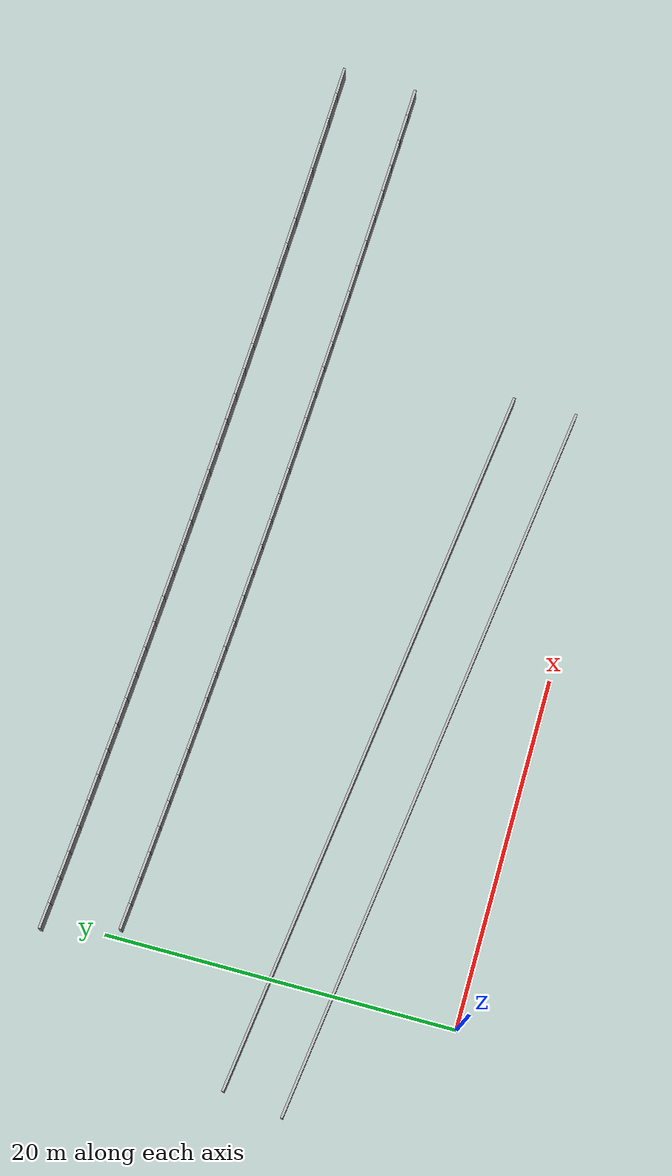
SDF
<?xml version="1.0" ?>
<sdf version="1.6">
  <model name="sps_2403">
    <pose frame="">0 0 0 0 -0 0</pose>
    <static>1</static>
    <self_collide>0</self_collide>
    <allow_auto_disable>0</allow_auto_disable>
    <link name="Wall305">
      <kinematic>0</kinematic>
      <gravity>1</gravity>
      <self_collide>0</self_collide>
      <collision name="collision">
        <geometry>
          <box>
            <size>41.997 0.15 2.5</size>
          </box>
        </geometry>
        <pose frame="">0 0 0 0 -0 0</pose>
      </collision>
      <visual name="visual">
        <geometry>
          <box>
            <size>41.997 0.15 2.5</size>
          </box>
        </geometry>
        <pose frame="">0 0 0 0 -0 0</pose>
        <cast_shadows>1</cast_shadows>
        <transparency>0.0</transparency>
      </visual>
      <pose frame="">13.6576 5.20104 1.25 0 -0 3.00818</pose>
    </link>
    <link name="Wall559">
      <kinematic>0</kinematic>
      <gravity>1</gravity>
      <self_collide>0</self_collide>
      <collision name="collision">
        <geometry>
          <box>
            <size>41.4314 0.15 2.5</size>
          </box>
        </geometry>
        <pose frame="">0 0 0 0 -0 0</pose>
      </collision>
      <visual name="visual">
        <geometry>
          <box>
            <size>41.4314 0.15 2.5</size>
          </box>
        </geometry>
        <pose frame="">0 0 0 0 -0 0</pose>
        <cast_shadows>1</cast_shadows>
        <transparency>0.0</transparency>
      </visual>
      <pose frame="">13.9379 8.69464 1.25 0 0 -0.133417</pose>
    </link>
    <link name="Wall3604">
      <kinematic>0</kinematic>
      <gravity>1</gravity>
      <self_collide>0</self_collide>
      <collision name="collision">
        <geometry>
          <box>
            <size>1.49647 0.15 2.5</size>
          </box>
        </geometry>
        <pose frame="">0 0 0 0 -0 0</pose>
      </collision>
      <visual name="visual">
        <geometry>
          <box>
            <size>1.49647 0.15 2.5</size>
          </box>
        </geometry>
        <pose frame="">0 0 0 0 -0 0</pose>
        <cast_shadows>1</cast_shadows>
        <transparency>0.0</transparency>
      </visual>
      <pose frame="">0.0590432 23.3704 1.25 0 0 -0.0957077</pose>
    </link>
    <link name="Wall3605">
      <kinematic>0</kinematic>
      <gravity>1</gravity>
      <self_collide>0</self_collide>
      <collision name="collision">
        <geometry>
          <box>
            <size>1.49661 0.15 2.5</size>
          </box>
        </geometry>
        <pose frame="">0 0 0 0 -0 0</pose>
      </collision>
      <visual name="visual">
        <geometry>
          <box>
            <size>1.49661 0.15 2.5</size>
          </box>
        </geometry>
        <pose frame="">0 0 0 0 -0 0</pose>
        <cast_shadows>1</cast_shadows>
        <transparency>0.0</transparency>
      </visual>
      <pose frame="">1.54885 23.2286 1.25 0 0 -0.0941011</pose>
    </link>
    <link name="Wall3606">
      <kinematic>0</kinematic>
      <gravity>1</gravity>
      <self_collide>0</self_collide>
      <collision name="collision">
        <geometry>
          <box>
            <size>1.4964 0.15 2.5</size>
          </box>
        </geometry>
        <pose frame="">0 0 0 0 -0 0</pose>
      </collision>
      <visual name="visual">
        <geometry>
          <box>
            <size>1.4964 0.15 2.5</size>
          </box>
        </geometry>
        <pose frame="">0 0 0 0 -0 0</pose>
        <cast_shadows>1</cast_shadows>
        <transparency>0.0</transparency>
      </visual>
      <pose frame="">3.03884 23.0891 1.25 0 0 -0.0925986</pose>
    </link>
    <link name="Wall3607">
      <kinematic>0</kinematic>
      <gravity>1</gravity>
      <self_collide>0</self_collide>
      <collision name="collision">
        <geometry>
          <box>
            <size>1.49661 0.15 2.5</size>
          </box>
        </geometry>
        <pose frame="">0 0 0 0 -0 0</pose>
      </collision>
      <visual name="visual">
        <geometry>
          <box>
            <size>1.49661 0.15 2.5</size>
          </box>
        </geometry>
        <pose frame="">0 0 0 0 -0 0</pose>
        <cast_shadows>1</cast_shadows>
        <transparency>0.0</transparency>
      </visual>
      <pose frame="">4.52904 22.9519 1.25 0 0 -0.0910291</pose>
    </link>
    <link name="Wall3608">
      <kinematic>0</kinematic>
      <gravity>1</gravity>
      <self_collide>0</self_collide>
      <collision name="collision">
        <geometry>
          <box>
            <size>1.49655 0.15 2.5</size>
          </box>
        </geometry>
        <pose frame="">0 0 0 0 -0 0</pose>
      </collision>
      <visual name="visual">
        <geometry>
          <box>
            <size>1.49655 0.15 2.5</size>
          </box>
        </geometry>
        <pose frame="">0 0 0 0 -0 0</pose>
        <cast_shadows>1</cast_shadows>
        <transparency>0.0</transparency>
      </visual>
      <pose frame="">6.01955 22.8172 1.25 0 0 -0.0892309</pose>
    </link>
    <link name="Wall3609">
      <kinematic>0</kinematic>
      <gravity>1</gravity>
      <self_collide>0</self_collide>
      <collision name="collision">
        <geometry>
          <box>
            <size>1.49655 0.15 2.5</size>
          </box>
        </geometry>
        <pose frame="">0 0 0 0 -0 0</pose>
      </collision>
      <visual name="visual">
        <geometry>
          <box>
            <size>1.49655 0.15 2.5</size>
          </box>
        </geometry>
        <pose frame="">0 0 0 0 -0 0</pose>
        <cast_shadows>1</cast_shadows>
        <transparency>0.0</transparency>
      </visual>
      <pose frame="">7.51025 22.6849 1.25 0 0 -0.0877983</pose>
    </link>
    <link name="Wall3610">
      <kinematic>0</kinematic>
      <gravity>1</gravity>
      <self_collide>0</self_collide>
      <collision name="collision">
        <geometry>
          <box>
            <size>1.49659 0.15 2.5</size>
          </box>
        </geometry>
        <pose frame="">0 0 0 0 -0 0</pose>
      </collision>
      <visual name="visual">
        <geometry>
          <box>
            <size>1.49659 0.15 2.5</size>
          </box>
        </geometry>
        <pose frame="">0 0 0 0 -0 0</pose>
        <cast_shadows>1</cast_shadows>
        <transparency>0.0</transparency>
      </visual>
      <pose frame="">9.00115 22.5548 1.25 0 0 -0.0862808</pose>
    </link>
    <link name="Wall3611">
      <kinematic>0</kinematic>
      <gravity>1</gravity>
      <self_collide>0</self_collide>
      <collision name="collision">
        <geometry>
          <box>
            <size>1.49632 0.15 2.5</size>
          </box>
        </geometry>
        <pose frame="">0 0 0 0 -0 0</pose>
      </collision>
      <visual name="visual">
        <geometry>
          <box>
            <size>1.49632 0.15 2.5</size>
          </box>
        </geometry>
        <pose frame="">0 0 0 0 -0 0</pose>
        <cast_shadows>1</cast_shadows>
        <transparency>0.0</transparency>
      </visual>
      <pose frame="">10.4921 22.4271 1.25 0 0 -0.0845775</pose>
    </link>
    <link name="Wall3612">
      <kinematic>0</kinematic>
      <gravity>1</gravity>
      <self_collide>0</self_collide>
      <collision name="collision">
        <geometry>
          <box>
            <size>1.49656 0.15 2.5</size>
          </box>
        </geometry>
        <pose frame="">0 0 0 0 -0 0</pose>
      </collision>
      <visual name="visual">
        <geometry>
          <box>
            <size>1.49656 0.15 2.5</size>
          </box>
        </geometry>
        <pose frame="">0 0 0 0 -0 0</pose>
        <cast_shadows>1</cast_shadows>
        <transparency>0.0</transparency>
      </visual>
      <pose frame="">11.9833 22.3018 1.25 0 0 -0.0830904</pose>
    </link>
    <link name="Wall3613">
      <kinematic>0</kinematic>
      <gravity>1</gravity>
      <self_collide>0</self_collide>
      <collision name="collision">
        <geometry>
          <box>
            <size>1.4966 0.15 2.5</size>
          </box>
        </geometry>
        <pose frame="">0 0 0 0 -0 0</pose>
      </collision>
      <visual name="visual">
        <geometry>
          <box>
            <size>1.4966 0.15 2.5</size>
          </box>
        </geometry>
        <pose frame="">0 0 0 0 -0 0</pose>
        <cast_shadows>1</cast_shadows>
        <transparency>0.0</transparency>
      </visual>
      <pose frame="">13.4748 22.1788 1.25 0 0 -0.0814919</pose>
    </link>
    <link name="Wall3614">
      <kinematic>0</kinematic>
      <gravity>1</gravity>
      <self_collide>0</self_collide>
      <collision name="collision">
        <geometry>
          <box>
            <size>1.49633 0.15 2.5</size>
          </box>
        </geometry>
        <pose frame="">0 0 0 0 -0 0</pose>
      </collision>
      <visual name="visual">
        <geometry>
          <box>
            <size>1.49633 0.15 2.5</size>
          </box>
        </geometry>
        <pose frame="">0 0 0 0 -0 0</pose>
        <cast_shadows>1</cast_shadows>
        <transparency>0.0</transparency>
      </visual>
      <pose frame="">14.9665 22.0583 1.25 0 0 -0.079747</pose>
    </link>
    <link name="Wall3615">
      <kinematic>0</kinematic>
      <gravity>1</gravity>
      <self_collide>0</self_collide>
      <collision name="collision">
        <geometry>
          <box>
            <size>1.4966 0.15 2.5</size>
          </box>
        </geometry>
        <pose frame="">0 0 0 0 -0 0</pose>
      </collision>
      <visual name="visual">
        <geometry>
          <box>
            <size>1.4966 0.15 2.5</size>
          </box>
        </geometry>
        <pose frame="">0 0 0 0 -0 0</pose>
        <cast_shadows>1</cast_shadows>
        <transparency>0.0</transparency>
      </visual>
      <pose frame="">16.4582 21.9401 1.25 0 0 -0.0783827</pose>
    </link>
    <link name="Wall3616">
      <kinematic>0</kinematic>
      <gravity>1</gravity>
      <self_collide>0</self_collide>
      <collision name="collision">
        <geometry>
          <box>
            <size>1.4966 0.15 2.5</size>
          </box>
        </geometry>
        <pose frame="">0 0 0 0 -0 0</pose>
      </collision>
      <visual name="visual">
        <geometry>
          <box>
            <size>1.4966 0.15 2.5</size>
          </box>
        </geometry>
        <pose frame="">0 0 0 0 -0 0</pose>
        <cast_shadows>1</cast_shadows>
        <transparency>0.0</transparency>
      </visual>
      <pose frame="">17.9503 21.8241 1.25 0 0 -0.0767875</pose>
    </link>
    <link name="Wall3617">
      <kinematic>0</kinematic>
      <gravity>1</gravity>
      <self_collide>0</self_collide>
      <collision name="collision">
        <geometry>
          <box>
            <size>1.49646 0.15 2.5</size>
          </box>
        </geometry>
        <pose frame="">0 0 0 0 -0 0</pose>
      </collision>
      <visual name="visual">
        <geometry>
          <box>
            <size>1.49646 0.15 2.5</size>
          </box>
        </geometry>
        <pose frame="">0 0 0 0 -0 0</pose>
        <cast_shadows>1</cast_shadows>
        <transparency>0.0</transparency>
      </visual>
      <pose frame="">19.4426 21.7106 1.25 0 0 -0.0750358</pose>
    </link>
    <link name="Wall3618">
      <kinematic>0</kinematic>
      <gravity>1</gravity>
      <self_collide>0</self_collide>
      <collision name="collision">
        <geometry>
          <box>
            <size>1.4966 0.15 2.5</size>
          </box>
        </geometry>
        <pose frame="">0 0 0 0 -0 0</pose>
      </collision>
      <visual name="visual">
        <geometry>
          <box>
            <size>1.4966 0.15 2.5</size>
          </box>
        </geometry>
        <pose frame="">0 0 0 0 -0 0</pose>
        <cast_shadows>1</cast_shadows>
        <transparency>0.0</transparency>
      </visual>
      <pose frame="">20.935 21.5995 1.25 0 0 -0.0735564</pose>
    </link>
    <link name="Wall3619">
      <kinematic>0</kinematic>
      <gravity>1</gravity>
      <self_collide>0</self_collide>
      <collision name="collision">
        <geometry>
          <box>
            <size>1.49648 0.15 2.5</size>
          </box>
        </geometry>
        <pose frame="">0 0 0 0 -0 0</pose>
      </collision>
      <visual name="visual">
        <geometry>
          <box>
            <size>1.49648 0.15 2.5</size>
          </box>
        </geometry>
        <pose frame="">0 0 0 0 -0 0</pose>
        <cast_shadows>1</cast_shadows>
        <transparency>0.0</transparency>
      </visual>
      <pose frame="">22.4275 21.4908 1.25 0 0 -0.0718451</pose>
    </link>
    <link name="Wall3620">
      <kinematic>0</kinematic>
      <gravity>1</gravity>
      <self_collide>0</self_collide>
      <collision name="collision">
        <geometry>
          <box>
            <size>1.4965 0.15 2.5</size>
          </box>
        </geometry>
        <pose frame="">0 0 0 0 -0 0</pose>
      </collision>
      <visual name="visual">
        <geometry>
          <box>
            <size>1.4965 0.15 2.5</size>
          </box>
        </geometry>
        <pose frame="">0 0 0 0 -0 0</pose>
        <cast_shadows>1</cast_shadows>
        <transparency>0.0</transparency>
      </visual>
      <pose frame="">23.9202 21.3845 1.25 0 0 -0.0703718</pose>
    </link>
    <link name="Wall3621">
      <kinematic>0</kinematic>
      <gravity>1</gravity>
      <self_collide>0</self_collide>
      <collision name="collision">
        <geometry>
          <box>
            <size>1.49653 0.15 2.5</size>
          </box>
        </geometry>
        <pose frame="">0 0 0 0 -0 0</pose>
      </collision>
      <visual name="visual">
        <geometry>
          <box>
            <size>1.49653 0.15 2.5</size>
          </box>
        </geometry>
        <pose frame="">0 0 0 0 -0 0</pose>
        <cast_shadows>1</cast_shadows>
        <transparency>0.0</transparency>
      </visual>
      <pose frame="">25.4131 21.2804 1.25 0 0 -0.0688579</pose>
    </link>
    <link name="Wall3622">
      <kinematic>0</kinematic>
      <gravity>1</gravity>
      <self_collide>0</self_collide>
      <collision name="collision">
        <geometry>
          <box>
            <size>1.49641 0.15 2.5</size>
          </box>
        </geometry>
        <pose frame="">0 0 0 0 -0 0</pose>
      </collision>
      <visual name="visual">
        <geometry>
          <box>
            <size>1.49641 0.15 2.5</size>
          </box>
        </geometry>
        <pose frame="">0 0 0 0 -0 0</pose>
        <cast_shadows>1</cast_shadows>
        <transparency>0.0</transparency>
      </visual>
      <pose frame="">26.9062 21.1787 1.25 0 0 -0.0671461</pose>
    </link>
    <link name="Wall3623">
      <kinematic>0</kinematic>
      <gravity>1</gravity>
      <self_collide>0</self_collide>
      <collision name="collision">
        <geometry>
          <box>
            <size>1.49663 0.15 2.5</size>
          </box>
        </geometry>
        <pose frame="">0 0 0 0 -0 0</pose>
      </collision>
      <visual name="visual">
        <geometry>
          <box>
            <size>1.49663 0.15 2.5</size>
          </box>
        </geometry>
        <pose frame="">0 0 0 0 -0 0</pose>
        <cast_shadows>1</cast_shadows>
        <transparency>0.0</transparency>
      </visual>
      <pose frame="">28.3994 21.0794 1.25 0 0 -0.0656648</pose>
    </link>
    <link name="Wall3624">
      <kinematic>0</kinematic>
      <gravity>1</gravity>
      <self_collide>0</self_collide>
      <collision name="collision">
        <geometry>
          <box>
            <size>1.49642 0.15 2.5</size>
          </box>
        </geometry>
        <pose frame="">0 0 0 0 -0 0</pose>
      </collision>
      <visual name="visual">
        <geometry>
          <box>
            <size>1.49642 0.15 2.5</size>
          </box>
        </geometry>
        <pose frame="">0 0 0 0 -0 0</pose>
        <cast_shadows>1</cast_shadows>
        <transparency>0.0</transparency>
      </visual>
      <pose frame="">29.8928 20.9824 1.25 0 0 -0.0640802</pose>
    </link>
    <link name="Wall3625">
      <kinematic>0</kinematic>
      <gravity>1</gravity>
      <self_collide>0</self_collide>
      <collision name="collision">
        <geometry>
          <box>
            <size>1.49657 0.15 2.5</size>
          </box>
        </geometry>
        <pose frame="">0 0 0 0 -0 0</pose>
      </collision>
      <visual name="visual">
        <geometry>
          <box>
            <size>1.49657 0.15 2.5</size>
          </box>
        </geometry>
        <pose frame="">0 0 0 0 -0 0</pose>
        <cast_shadows>1</cast_shadows>
        <transparency>0.0</transparency>
      </visual>
      <pose frame="">31.3863 20.8878 1.25 0 0 -0.0624392</pose>
    </link>
    <link name="Wall3626">
      <kinematic>0</kinematic>
      <gravity>1</gravity>
      <self_collide>0</self_collide>
      <collision name="collision">
        <geometry>
          <box>
            <size>1.49654 0.15 2.5</size>
          </box>
        </geometry>
        <pose frame="">0 0 0 0 -0 0</pose>
      </collision>
      <visual name="visual">
        <geometry>
          <box>
            <size>1.49654 0.15 2.5</size>
          </box>
        </geometry>
        <pose frame="">0 0 0 0 -0 0</pose>
        <cast_shadows>1</cast_shadows>
        <transparency>0.0</transparency>
      </visual>
      <pose frame="">32.88 20.7956 1.25 0 0 -0.0608466</pose>
    </link>
    <link name="Wall3627">
      <kinematic>0</kinematic>
      <gravity>1</gravity>
      <self_collide>0</self_collide>
      <collision name="collision">
        <geometry>
          <box>
            <size>1.49641 0.15 2.5</size>
          </box>
        </geometry>
        <pose frame="">0 0 0 0 -0 0</pose>
      </collision>
      <visual name="visual">
        <geometry>
          <box>
            <size>1.49641 0.15 2.5</size>
          </box>
        </geometry>
        <pose frame="">0 0 0 0 -0 0</pose>
        <cast_shadows>1</cast_shadows>
        <transparency>0.0</transparency>
      </visual>
      <pose frame="">34.3737 20.7057 1.25 0 0 -0.059381</pose>
    </link>
    <link name="Wall3628">
      <kinematic>0</kinematic>
      <gravity>1</gravity>
      <self_collide>0</self_collide>
      <collision name="collision">
        <geometry>
          <box>
            <size>1.49668 0.15 2.5</size>
          </box>
        </geometry>
        <pose frame="">0 0 0 0 -0 0</pose>
      </collision>
      <visual name="visual">
        <geometry>
          <box>
            <size>1.49668 0.15 2.5</size>
          </box>
        </geometry>
        <pose frame="">0 0 0 0 -0 0</pose>
        <cast_shadows>1</cast_shadows>
        <transparency>0.0</transparency>
      </visual>
      <pose frame="">35.8677 20.6182 1.25 0 0 -0.0576136</pose>
    </link>
    <link name="Wall3629">
      <kinematic>0</kinematic>
      <gravity>1</gravity>
      <self_collide>0</self_collide>
      <collision name="collision">
        <geometry>
          <box>
            <size>1.49638 0.15 2.5</size>
          </box>
        </geometry>
        <pose frame="">0 0 0 0 -0 0</pose>
      </collision>
      <visual name="visual">
        <geometry>
          <box>
            <size>1.49638 0.15 2.5</size>
          </box>
        </geometry>
        <pose frame="">0 0 0 0 -0 0</pose>
        <cast_shadows>1</cast_shadows>
        <transparency>0.0</transparency>
      </visual>
      <pose frame="">37.3618 20.5331 1.25 0 0 -0.0561546</pose>
    </link>
    <link name="Wall3630">
      <kinematic>0</kinematic>
      <gravity>1</gravity>
      <self_collide>0</self_collide>
      <collision name="collision">
        <geometry>
          <box>
            <size>1.49661 0.15 2.5</size>
          </box>
        </geometry>
        <pose frame="">0 0 0 0 -0 0</pose>
      </collision>
      <visual name="visual">
        <geometry>
          <box>
            <size>1.49661 0.15 2.5</size>
          </box>
        </geometry>
        <pose frame="">0 0 0 0 -0 0</pose>
        <cast_shadows>1</cast_shadows>
        <transparency>0.0</transparency>
      </visual>
      <pose frame="">38.856 20.4503 1.25 0 0 -0.0545529</pose>
    </link>
    <link name="Wall3631">
      <kinematic>0</kinematic>
      <gravity>1</gravity>
      <self_collide>0</self_collide>
      <collision name="collision">
        <geometry>
          <box>
            <size>1.49654 0.15 2.5</size>
          </box>
        </geometry>
        <pose frame="">0 0 0 0 -0 0</pose>
      </collision>
      <visual name="visual">
        <geometry>
          <box>
            <size>1.49654 0.15 2.5</size>
          </box>
        </geometry>
        <pose frame="">0 0 0 0 -0 0</pose>
        <cast_shadows>1</cast_shadows>
        <transparency>0.0</transparency>
      </visual>
      <pose frame="">40.3505 20.3699 1.25 0 0 -0.0529625</pose>
    </link>
    <link name="Wall3632">
      <kinematic>0</kinematic>
      <gravity>1</gravity>
      <self_collide>0</self_collide>
      <collision name="collision">
        <geometry>
          <box>
            <size>1.49653 0.15 2.5</size>
          </box>
        </geometry>
        <pose frame="">0 0 0 0 -0 0</pose>
      </collision>
      <visual name="visual">
        <geometry>
          <box>
            <size>1.49653 0.15 2.5</size>
          </box>
        </geometry>
        <pose frame="">0 0 0 0 -0 0</pose>
        <cast_shadows>1</cast_shadows>
        <transparency>0.0</transparency>
      </visual>
      <pose frame="">41.845 20.292 1.25 0 0 -0.0512069</pose>
    </link>
    <link name="Wall3633">
      <kinematic>0</kinematic>
      <gravity>1</gravity>
      <self_collide>0</self_collide>
      <collision name="collision">
        <geometry>
          <box>
            <size>1.49649 0.15 2.5</size>
          </box>
        </geometry>
        <pose frame="">0 0 0 0 -0 0</pose>
      </collision>
      <visual name="visual">
        <geometry>
          <box>
            <size>1.49649 0.15 2.5</size>
          </box>
        </geometry>
        <pose frame="">0 0 0 0 -0 0</pose>
        <cast_shadows>1</cast_shadows>
        <transparency>0.0</transparency>
      </visual>
      <pose frame="">43.3396 20.2164 1.25 0 0 -0.0498606</pose>
    </link>
    <link name="Wall3634">
      <kinematic>0</kinematic>
      <gravity>1</gravity>
      <self_collide>0</self_collide>
      <collision name="collision">
        <geometry>
          <box>
            <size>1.49649 0.15 2.5</size>
          </box>
        </geometry>
        <pose frame="">0 0 0 0 -0 0</pose>
      </collision>
      <visual name="visual">
        <geometry>
          <box>
            <size>1.49649 0.15 2.5</size>
          </box>
        </geometry>
        <pose frame="">0 0 0 0 -0 0</pose>
        <cast_shadows>1</cast_shadows>
        <transparency>0.0</transparency>
      </visual>
      <pose frame="">44.8343 20.1431 1.25 0 0 -0.0481457</pose>
    </link>
    <link name="Wall3635">
      <kinematic>0</kinematic>
      <gravity>1</gravity>
      <self_collide>0</self_collide>
      <collision name="collision">
        <geometry>
          <box>
            <size>1.49667 0.15 2.5</size>
          </box>
        </geometry>
        <pose frame="">0 0 0 0 -0 0</pose>
      </collision>
      <visual name="visual">
        <geometry>
          <box>
            <size>1.49667 0.15 2.5</size>
          </box>
        </geometry>
        <pose frame="">0 0 0 0 -0 0</pose>
        <cast_shadows>1</cast_shadows>
        <transparency>0.0</transparency>
      </visual>
      <pose frame="">46.3292 20.0723 1.25 0 0 -0.0465066</pose>
    </link>
    <link name="Wall3636">
      <kinematic>0</kinematic>
      <gravity>1</gravity>
      <self_collide>0</self_collide>
      <collision name="collision">
        <geometry>
          <box>
            <size>1.49651 0.15 2.5</size>
          </box>
        </geometry>
        <pose frame="">0 0 0 0 -0 0</pose>
      </collision>
      <visual name="visual">
        <geometry>
          <box>
            <size>1.49651 0.15 2.5</size>
          </box>
        </geometry>
        <pose frame="">0 0 0 0 -0 0</pose>
        <cast_shadows>1</cast_shadows>
        <transparency>0.0</transparency>
      </visual>
      <pose frame="">47.8242 20.0038 1.25 0 0 -0.0450418</pose>
    </link>
    <link name="Wall3637">
      <kinematic>0</kinematic>
      <gravity>1</gravity>
      <self_collide>0</self_collide>
      <collision name="collision">
        <geometry>
          <box>
            <size>1.49659 0.15 2.5</size>
          </box>
        </geometry>
        <pose frame="">0 0 0 0 -0 0</pose>
      </collision>
      <visual name="visual">
        <geometry>
          <box>
            <size>1.49659 0.15 2.5</size>
          </box>
        </geometry>
        <pose frame="">0 0 0 0 -0 0</pose>
        <cast_shadows>1</cast_shadows>
        <transparency>0.0</transparency>
      </visual>
      <pose frame="">49.3193 19.9376 1.25 0 0 -0.0434474</pose>
    </link>
    <link name="Wall7380">
      <kinematic>0</kinematic>
      <gravity>1</gravity>
      <self_collide>0</self_collide>
      <collision name="collision">
        <geometry>
          <box>
            <size>1.50305 0.15 2.5</size>
          </box>
        </geometry>
        <pose frame="">0 0 0 0 -0 0</pose>
      </collision>
      <visual name="visual">
        <geometry>
          <box>
            <size>1.50305 0.15 2.5</size>
          </box>
        </geometry>
        <pose frame="">0 0 0 0 -0 0</pose>
        <cast_shadows>1</cast_shadows>
        <transparency>0.0</transparency>
      </visual>
      <pose frame="">1.16344 19.1061 1.25 0 0 -0.0941047</pose>
    </link>
    <link name="Wall7381">
      <kinematic>0</kinematic>
      <gravity>1</gravity>
      <self_collide>0</self_collide>
      <collision name="collision">
        <geometry>
          <box>
            <size>1.503 0.15 2.5</size>
          </box>
        </geometry>
        <pose frame="">0 0 0 0 -0 0</pose>
      </collision>
      <visual name="visual">
        <geometry>
          <box>
            <size>1.503 0.15 2.5</size>
          </box>
        </geometry>
        <pose frame="">0 0 0 0 -0 0</pose>
        <cast_shadows>1</cast_shadows>
        <transparency>0.0</transparency>
      </visual>
      <pose frame="">2.65993 18.9661 1.25 0 0 -0.0924761</pose>
    </link>
    <link name="Wall7382">
      <kinematic>0</kinematic>
      <gravity>1</gravity>
      <self_collide>0</self_collide>
      <collision name="collision">
        <geometry>
          <box>
            <size>1.50323 0.15 2.5</size>
          </box>
        </geometry>
        <pose frame="">0 0 0 0 -0 0</pose>
      </collision>
      <visual name="visual">
        <geometry>
          <box>
            <size>1.50323 0.15 2.5</size>
          </box>
        </geometry>
        <pose frame="">0 0 0 0 -0 0</pose>
        <cast_shadows>1</cast_shadows>
        <transparency>0.0</transparency>
      </visual>
      <pose frame="">4.15673 18.8284 1.25 0 0 -0.0909944</pose>
    </link>
    <link name="Wall7383">
      <kinematic>0</kinematic>
      <gravity>1</gravity>
      <self_collide>0</self_collide>
      <collision name="collision">
        <geometry>
          <box>
            <size>1.50301 0.15 2.5</size>
          </box>
        </geometry>
        <pose frame="">0 0 0 0 -0 0</pose>
      </collision>
      <visual name="visual">
        <geometry>
          <box>
            <size>1.50301 0.15 2.5</size>
          </box>
        </geometry>
        <pose frame="">0 0 0 0 -0 0</pose>
        <cast_shadows>1</cast_shadows>
        <transparency>0.0</transparency>
      </visual>
      <pose frame="">5.65374 18.693 1.25 0 0 -0.0894172</pose>
    </link>
    <link name="Wall7384">
      <kinematic>0</kinematic>
      <gravity>1</gravity>
      <self_collide>0</self_collide>
      <collision name="collision">
        <geometry>
          <box>
            <size>1.50298 0.15 2.5</size>
          </box>
        </geometry>
        <pose frame="">0 0 0 0 -0 0</pose>
      </collision>
      <visual name="visual">
        <geometry>
          <box>
            <size>1.50298 0.15 2.5</size>
          </box>
        </geometry>
        <pose frame="">0 0 0 0 -0 0</pose>
        <cast_shadows>1</cast_shadows>
        <transparency>0.0</transparency>
      </visual>
      <pose frame="">7.15084 18.56 1.25 0 0 -0.0877885</pose>
    </link>
    <link name="Wall7385">
      <kinematic>0</kinematic>
      <gravity>1</gravity>
      <self_collide>0</self_collide>
      <collision name="collision">
        <geometry>
          <box>
            <size>1.50302 0.15 2.5</size>
          </box>
        </geometry>
        <pose frame="">0 0 0 0 -0 0</pose>
      </collision>
      <visual name="visual">
        <geometry>
          <box>
            <size>1.50302 0.15 2.5</size>
          </box>
        </geometry>
        <pose frame="">0 0 0 0 -0 0</pose>
        <cast_shadows>1</cast_shadows>
        <transparency>0.0</transparency>
      </visual>
      <pose frame="">8.64815 18.4294 1.25 0 0 -0.0861966</pose>
    </link>
    <link name="Wall7386">
      <kinematic>0</kinematic>
      <gravity>1</gravity>
      <self_collide>0</self_collide>
      <collision name="collision">
        <geometry>
          <box>
            <size>1.50294 0.15 2.5</size>
          </box>
        </geometry>
        <pose frame="">0 0 0 0 -0 0</pose>
      </collision>
      <visual name="visual">
        <geometry>
          <box>
            <size>1.50294 0.15 2.5</size>
          </box>
        </geometry>
        <pose frame="">0 0 0 0 -0 0</pose>
        <cast_shadows>1</cast_shadows>
        <transparency>0.0</transparency>
      </visual>
      <pose frame="">10.1457 18.3012 1.25 0 0 -0.0846117</pose>
    </link>
    <link name="Wall7387">
      <kinematic>0</kinematic>
      <gravity>1</gravity>
      <self_collide>0</self_collide>
      <collision name="collision">
        <geometry>
          <box>
            <size>1.50324 0.15 2.5</size>
          </box>
        </geometry>
        <pose frame="">0 0 0 0 -0 0</pose>
      </collision>
      <visual name="visual">
        <geometry>
          <box>
            <size>1.50324 0.15 2.5</size>
          </box>
        </geometry>
        <pose frame="">0 0 0 0 -0 0</pose>
        <cast_shadows>1</cast_shadows>
        <transparency>0.0</transparency>
      </visual>
      <pose frame="">11.6435 18.1753 1.25 0 0 -0.0831277</pose>
    </link>
    <link name="Wall7388">
      <kinematic>0</kinematic>
      <gravity>1</gravity>
      <self_collide>0</self_collide>
      <collision name="collision">
        <geometry>
          <box>
            <size>1.50314 0.15 2.5</size>
          </box>
        </geometry>
        <pose frame="">0 0 0 0 -0 0</pose>
      </collision>
      <visual name="visual">
        <geometry>
          <box>
            <size>1.50314 0.15 2.5</size>
          </box>
        </geometry>
        <pose frame="">0 0 0 0 -0 0</pose>
        <cast_shadows>1</cast_shadows>
        <transparency>0.0</transparency>
      </visual>
      <pose frame="">13.1416 18.0518 1.25 0 0 -0.081381</pose>
    </link>
    <link name="Wall7389">
      <kinematic>0</kinematic>
      <gravity>1</gravity>
      <self_collide>0</self_collide>
      <collision name="collision">
        <geometry>
          <box>
            <size>1.50321 0.15 2.5</size>
          </box>
        </geometry>
        <pose frame="">0 0 0 0 -0 0</pose>
      </collision>
      <visual name="visual">
        <geometry>
          <box>
            <size>1.50321 0.15 2.5</size>
          </box>
        </geometry>
        <pose frame="">0 0 0 0 -0 0</pose>
        <cast_shadows>1</cast_shadows>
        <transparency>0.0</transparency>
      </visual>
      <pose frame="">14.6399 17.9307 1.25 0 0 -0.0799109</pose>
    </link>
    <link name="Wall7390">
      <kinematic>0</kinematic>
      <gravity>1</gravity>
      <self_collide>0</self_collide>
      <collision name="collision">
        <geometry>
          <box>
            <size>1.50302 0.15 2.5</size>
          </box>
        </geometry>
        <pose frame="">0 0 0 0 -0 0</pose>
      </collision>
      <visual name="visual">
        <geometry>
          <box>
            <size>1.50302 0.15 2.5</size>
          </box>
        </geometry>
        <pose frame="">0 0 0 0 -0 0</pose>
        <cast_shadows>1</cast_shadows>
        <transparency>0.0</transparency>
      </visual>
      <pose frame="">16.1383 17.8119 1.25 0 0 -0.0783323</pose>
    </link>
    <link name="Wall7391">
      <kinematic>0</kinematic>
      <gravity>1</gravity>
      <self_collide>0</self_collide>
      <collision name="collision">
        <geometry>
          <box>
            <size>1.50302 0.15 2.5</size>
          </box>
        </geometry>
        <pose frame="">0 0 0 0 -0 0</pose>
      </collision>
      <visual name="visual">
        <geometry>
          <box>
            <size>1.50302 0.15 2.5</size>
          </box>
        </geometry>
        <pose frame="">0 0 0 0 -0 0</pose>
        <cast_shadows>1</cast_shadows>
        <transparency>0.0</transparency>
      </visual>
      <pose frame="">17.6368 17.6955 1.25 0 0 -0.0767034</pose>
    </link>
    <link name="Wall7392">
      <kinematic>0</kinematic>
      <gravity>1</gravity>
      <self_collide>0</self_collide>
      <collision name="collision">
        <geometry>
          <box>
            <size>1.50302 0.15 2.5</size>
          </box>
        </geometry>
        <pose frame="">0 0 0 0 -0 0</pose>
      </collision>
      <visual name="visual">
        <geometry>
          <box>
            <size>1.50302 0.15 2.5</size>
          </box>
        </geometry>
        <pose frame="">0 0 0 0 -0 0</pose>
        <cast_shadows>1</cast_shadows>
        <transparency>0.0</transparency>
      </visual>
      <pose frame="">19.1355 17.5815 1.25 0 0 -0.075115</pose>
    </link>
    <link name="Wall7393">
      <kinematic>0</kinematic>
      <gravity>1</gravity>
      <self_collide>0</self_collide>
      <collision name="collision">
        <geometry>
          <box>
            <size>1.50327 0.15 2.5</size>
          </box>
        </geometry>
        <pose frame="">0 0 0 0 -0 0</pose>
      </collision>
      <visual name="visual">
        <geometry>
          <box>
            <size>1.50327 0.15 2.5</size>
          </box>
        </geometry>
        <pose frame="">0 0 0 0 -0 0</pose>
        <cast_shadows>1</cast_shadows>
        <transparency>0.0</transparency>
      </visual>
      <pose frame="">20.6345 17.4699 1.25 0 0 -0.0735146</pose>
    </link>
    <link name="Wall7394">
      <kinematic>0</kinematic>
      <gravity>1</gravity>
      <self_collide>0</self_collide>
      <collision name="collision">
        <geometry>
          <box>
            <size>1.50309 0.15 2.5</size>
          </box>
        </geometry>
        <pose frame="">0 0 0 0 -0 0</pose>
      </collision>
      <visual name="visual">
        <geometry>
          <box>
            <size>1.50309 0.15 2.5</size>
          </box>
        </geometry>
        <pose frame="">0 0 0 0 -0 0</pose>
        <cast_shadows>1</cast_shadows>
        <transparency>0.0</transparency>
      </visual>
      <pose frame="">22.1337 17.3607 1.25 0 0 -0.0718948</pose>
    </link>
    <link name="Wall7395">
      <kinematic>0</kinematic>
      <gravity>1</gravity>
      <self_collide>0</self_collide>
      <collision name="collision">
        <geometry>
          <box>
            <size>1.50311 0.15 2.5</size>
          </box>
        </geometry>
        <pose frame="">0 0 0 0 -0 0</pose>
      </collision>
      <visual name="visual">
        <geometry>
          <box>
            <size>1.50311 0.15 2.5</size>
          </box>
        </geometry>
        <pose frame="">0 0 0 0 -0 0</pose>
        <cast_shadows>1</cast_shadows>
        <transparency>0.0</transparency>
      </visual>
      <pose frame="">23.633 17.2539 1.25 0 0 -0.070347</pose>
    </link>
    <link name="Wall7396">
      <kinematic>0</kinematic>
      <gravity>1</gravity>
      <self_collide>0</self_collide>
      <collision name="collision">
        <geometry>
          <box>
            <size>1.50295 0.15 2.5</size>
          </box>
        </geometry>
        <pose frame="">0 0 0 0 -0 0</pose>
      </collision>
      <visual name="visual">
        <geometry>
          <box>
            <size>1.50295 0.15 2.5</size>
          </box>
        </geometry>
        <pose frame="">0 0 0 0 -0 0</pose>
        <cast_shadows>1</cast_shadows>
        <transparency>0.0</transparency>
      </visual>
      <pose frame="">25.1323 17.1494 1.25 0 0 -0.0688481</pose>
    </link>
    <link name="Wall7397">
      <kinematic>0</kinematic>
      <gravity>1</gravity>
      <self_collide>0</self_collide>
      <collision name="collision">
        <geometry>
          <box>
            <size>1.5032 0.15 2.5</size>
          </box>
        </geometry>
        <pose frame="">0 0 0 0 -0 0</pose>
      </collision>
      <visual name="visual">
        <geometry>
          <box>
            <size>1.5032 0.15 2.5</size>
          </box>
        </geometry>
        <pose frame="">0 0 0 0 -0 0</pose>
        <cast_shadows>1</cast_shadows>
        <transparency>0.0</transparency>
      </visual>
      <pose frame="">26.6319 17.0473 1.25 0 0 -0.0670867</pose>
    </link>
    <link name="Wall7398">
      <kinematic>0</kinematic>
      <gravity>1</gravity>
      <self_collide>0</self_collide>
      <collision name="collision">
        <geometry>
          <box>
            <size>1.50306 0.15 2.5</size>
          </box>
        </geometry>
        <pose frame="">0 0 0 0 -0 0</pose>
      </collision>
      <visual name="visual">
        <geometry>
          <box>
            <size>1.50306 0.15 2.5</size>
          </box>
        </geometry>
        <pose frame="">0 0 0 0 -0 0</pose>
        <cast_shadows>1</cast_shadows>
        <transparency>0.0</transparency>
      </visual>
      <pose frame="">28.1318 16.9476 1.25 0 0 -0.0656687</pose>
    </link>
    <link name="Wall7399">
      <kinematic>0</kinematic>
      <gravity>1</gravity>
      <self_collide>0</self_collide>
      <collision name="collision">
        <geometry>
          <box>
            <size>1.50308 0.15 2.5</size>
          </box>
        </geometry>
        <pose frame="">0 0 0 0 -0 0</pose>
      </collision>
      <visual name="visual">
        <geometry>
          <box>
            <size>1.50308 0.15 2.5</size>
          </box>
        </geometry>
        <pose frame="">0 0 0 0 -0 0</pose>
        <cast_shadows>1</cast_shadows>
        <transparency>0.0</transparency>
      </visual>
      <pose frame="">29.6317 16.8502 1.25 0 0 -0.0640399</pose>
    </link>
    <link name="Wall7400">
      <kinematic>0</kinematic>
      <gravity>1</gravity>
      <self_collide>0</self_collide>
      <collision name="collision">
        <geometry>
          <box>
            <size>1.50311 0.15 2.5</size>
          </box>
        </geometry>
        <pose frame="">0 0 0 0 -0 0</pose>
      </collision>
      <visual name="visual">
        <geometry>
          <box>
            <size>1.50311 0.15 2.5</size>
          </box>
        </geometry>
        <pose frame="">0 0 0 0 -0 0</pose>
        <cast_shadows>1</cast_shadows>
        <transparency>0.0</transparency>
      </visual>
      <pose frame="">31.1318 16.7552 1.25 0 0 -0.0624517</pose>
    </link>
    <link name="Wall7401">
      <kinematic>0</kinematic>
      <gravity>1</gravity>
      <self_collide>0</self_collide>
      <collision name="collision">
        <geometry>
          <box>
            <size>1.50296 0.15 2.5</size>
          </box>
        </geometry>
        <pose frame="">0 0 0 0 -0 0</pose>
      </collision>
      <visual name="visual">
        <geometry>
          <box>
            <size>1.50296 0.15 2.5</size>
          </box>
        </geometry>
        <pose frame="">0 0 0 0 -0 0</pose>
        <cast_shadows>1</cast_shadows>
        <transparency>0.0</transparency>
      </visual>
      <pose frame="">32.6319 16.6626 1.25 0 0 -0.0608305</pose>
    </link>
    <link name="Wall7402">
      <kinematic>0</kinematic>
      <gravity>1</gravity>
      <self_collide>0</self_collide>
      <collision name="collision">
        <geometry>
          <box>
            <size>1.50306 0.15 2.5</size>
          </box>
        </geometry>
        <pose frame="">0 0 0 0 -0 0</pose>
      </collision>
      <visual name="visual">
        <geometry>
          <box>
            <size>1.50306 0.15 2.5</size>
          </box>
        </geometry>
        <pose frame="">0 0 0 0 -0 0</pose>
        <cast_shadows>1</cast_shadows>
        <transparency>0.0</transparency>
      </visual>
      <pose frame="">34.1323 16.5724 1.25 0 0 -0.0592399</pose>
    </link>
    <link name="Wall7403">
      <kinematic>0</kinematic>
      <gravity>1</gravity>
      <self_collide>0</self_collide>
      <collision name="collision">
        <geometry>
          <box>
            <size>1.50287 0.15 2.5</size>
          </box>
        </geometry>
        <pose frame="">0 0 0 0 -0 0</pose>
      </collision>
      <visual name="visual">
        <geometry>
          <box>
            <size>1.50287 0.15 2.5</size>
          </box>
        </geometry>
        <pose frame="">0 0 0 0 -0 0</pose>
        <cast_shadows>1</cast_shadows>
        <transparency>0.0</transparency>
      </visual>
      <pose frame="">35.6327 16.4845 1.25 0 0 -0.0577828</pose>
    </link>
    <link name="Wall7404">
      <kinematic>0</kinematic>
      <gravity>1</gravity>
      <self_collide>0</self_collide>
      <collision name="collision">
        <geometry>
          <box>
            <size>1.50316 0.15 2.5</size>
          </box>
        </geometry>
        <pose frame="">0 0 0 0 -0 0</pose>
      </collision>
      <visual name="visual">
        <geometry>
          <box>
            <size>1.50316 0.15 2.5</size>
          </box>
        </geometry>
        <pose frame="">0 0 0 0 -0 0</pose>
        <cast_shadows>1</cast_shadows>
        <transparency>0.0</transparency>
      </visual>
      <pose frame="">37.1332 16.399 1.25 0 0 -0.0560638</pose>
    </link>
    <link name="Wall7405">
      <kinematic>0</kinematic>
      <gravity>1</gravity>
      <self_collide>0</self_collide>
      <collision name="collision">
        <geometry>
          <box>
            <size>1.50309 0.15 2.5</size>
          </box>
        </geometry>
        <pose frame="">0 0 0 0 -0 0</pose>
      </collision>
      <visual name="visual">
        <geometry>
          <box>
            <size>1.50309 0.15 2.5</size>
          </box>
        </geometry>
        <pose frame="">0 0 0 0 -0 0</pose>
        <cast_shadows>1</cast_shadows>
        <transparency>0.0</transparency>
      </visual>
      <pose frame="">38.6341 16.3159 1.25 0 0 -0.0545615</pose>
    </link>
    <link name="Wall7406">
      <kinematic>0</kinematic>
      <gravity>1</gravity>
      <self_collide>0</self_collide>
      <collision name="collision">
        <geometry>
          <box>
            <size>1.50326 0.15 2.5</size>
          </box>
        </geometry>
        <pose frame="">0 0 0 0 -0 0</pose>
      </collision>
      <visual name="visual">
        <geometry>
          <box>
            <size>1.50326 0.15 2.5</size>
          </box>
        </geometry>
        <pose frame="">0 0 0 0 -0 0</pose>
        <cast_shadows>1</cast_shadows>
        <transparency>0.0</transparency>
      </visual>
      <pose frame="">40.1351 16.2352 1.25 0 0 -0.0528477</pose>
    </link>
    <link name="Wall7407">
      <kinematic>0</kinematic>
      <gravity>1</gravity>
      <self_collide>0</self_collide>
      <collision name="collision">
        <geometry>
          <box>
            <size>1.50302 0.15 2.5</size>
          </box>
        </geometry>
        <pose frame="">0 0 0 0 -0 0</pose>
      </collision>
      <visual name="visual">
        <geometry>
          <box>
            <size>1.50302 0.15 2.5</size>
          </box>
        </geometry>
        <pose frame="">0 0 0 0 -0 0</pose>
        <cast_shadows>1</cast_shadows>
        <transparency>0.0</transparency>
      </visual>
      <pose frame="">41.6362 16.1569 1.25 0 0 -0.0513921</pose>
    </link>
    <link name="Wall7408">
      <kinematic>0</kinematic>
      <gravity>1</gravity>
      <self_collide>0</self_collide>
      <collision name="collision">
        <geometry>
          <box>
            <size>1.50302 0.15 2.5</size>
          </box>
        </geometry>
        <pose frame="">0 0 0 0 -0 0</pose>
      </collision>
      <visual name="visual">
        <geometry>
          <box>
            <size>1.50302 0.15 2.5</size>
          </box>
        </geometry>
        <pose frame="">0 0 0 0 -0 0</pose>
        <cast_shadows>1</cast_shadows>
        <transparency>0.0</transparency>
      </visual>
      <pose frame="">43.1373 16.0809 1.25 0 0 -0.0498063</pose>
    </link>
    <link name="Wall7409">
      <kinematic>0</kinematic>
      <gravity>1</gravity>
      <self_collide>0</self_collide>
      <collision name="collision">
        <geometry>
          <box>
            <size>1.50315 0.15 2.5</size>
          </box>
        </geometry>
        <pose frame="">0 0 0 0 -0 0</pose>
      </collision>
      <visual name="visual">
        <geometry>
          <box>
            <size>1.50315 0.15 2.5</size>
          </box>
        </geometry>
        <pose frame="">0 0 0 0 -0 0</pose>
        <cast_shadows>1</cast_shadows>
        <transparency>0.0</transparency>
      </visual>
      <pose frame="">44.6385 16.0073 1.25 0 0 -0.048176</pose>
    </link>
    <link name="Wall7410">
      <kinematic>0</kinematic>
      <gravity>1</gravity>
      <self_collide>0</self_collide>
      <collision name="collision">
        <geometry>
          <box>
            <size>1.50285 0.15 2.5</size>
          </box>
        </geometry>
        <pose frame="">0 0 0 0 -0 0</pose>
      </collision>
      <visual name="visual">
        <geometry>
          <box>
            <size>1.50285 0.15 2.5</size>
          </box>
        </geometry>
        <pose frame="">0 0 0 0 -0 0</pose>
        <cast_shadows>1</cast_shadows>
        <transparency>0.0</transparency>
      </visual>
      <pose frame="">46.1399 15.9361 1.25 0 0 -0.0465998</pose>
    </link>
    <link name="Wall7411">
      <kinematic>0</kinematic>
      <gravity>1</gravity>
      <self_collide>0</self_collide>
      <collision name="collision">
        <geometry>
          <box>
            <size>1.50311 0.15 2.5</size>
          </box>
        </geometry>
        <pose frame="">0 0 0 0 -0 0</pose>
      </collision>
      <visual name="visual">
        <geometry>
          <box>
            <size>1.50311 0.15 2.5</size>
          </box>
        </geometry>
        <pose frame="">0 0 0 0 -0 0</pose>
        <cast_shadows>1</cast_shadows>
        <transparency>0.0</transparency>
      </visual>
      <pose frame="">47.6413 15.8673 1.25 0 0 -0.044966</pose>
    </link>
    <link name="Wall7412">
      <kinematic>0</kinematic>
      <gravity>1</gravity>
      <self_collide>0</self_collide>
      <collision name="collision">
        <geometry>
          <box>
            <size>1.50301 0.15 2.5</size>
          </box>
        </geometry>
        <pose frame="">0 0 0 0 -0 0</pose>
      </collision>
      <visual name="visual">
        <geometry>
          <box>
            <size>1.50301 0.15 2.5</size>
          </box>
        </geometry>
        <pose frame="">0 0 0 0 -0 0</pose>
        <cast_shadows>1</cast_shadows>
        <transparency>0.0</transparency>
      </visual>
      <pose frame="">49.1428 15.8008 1.25 0 0 -0.0435461</pose>
    </link>
  </model>
</sdf>
